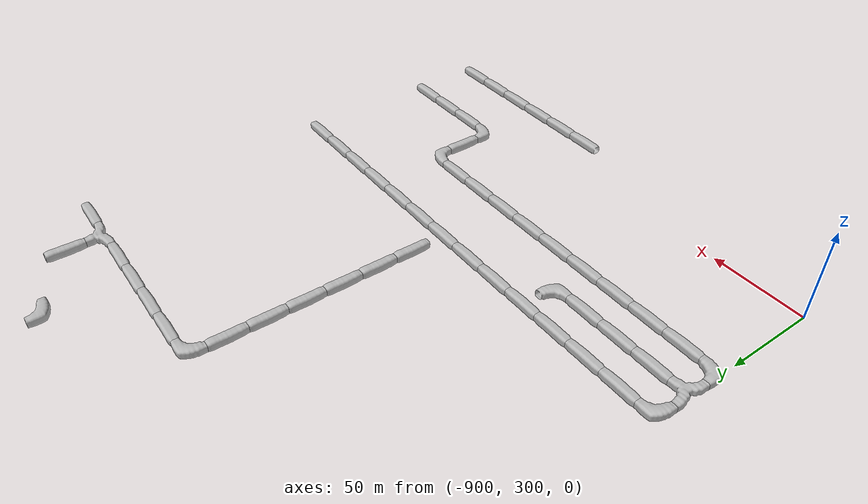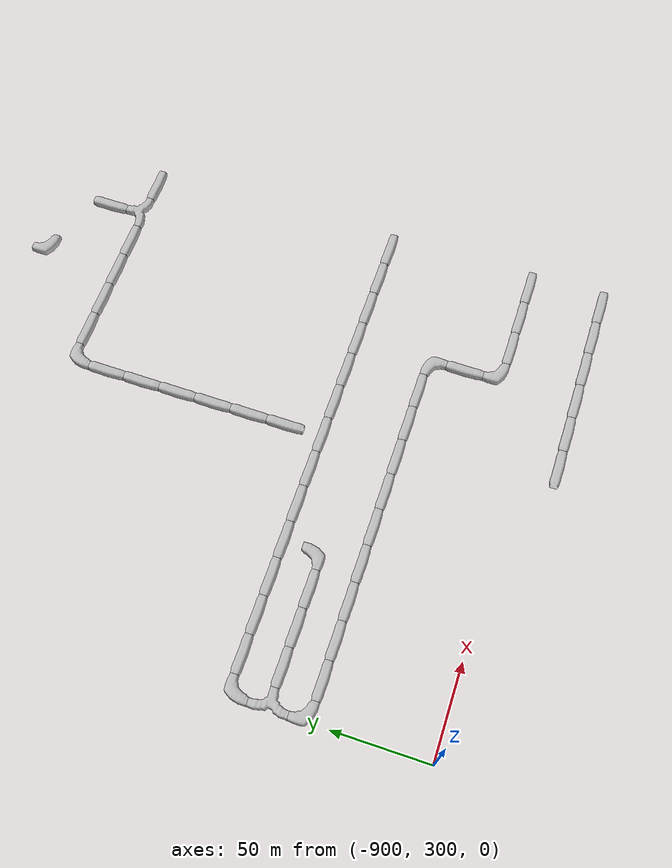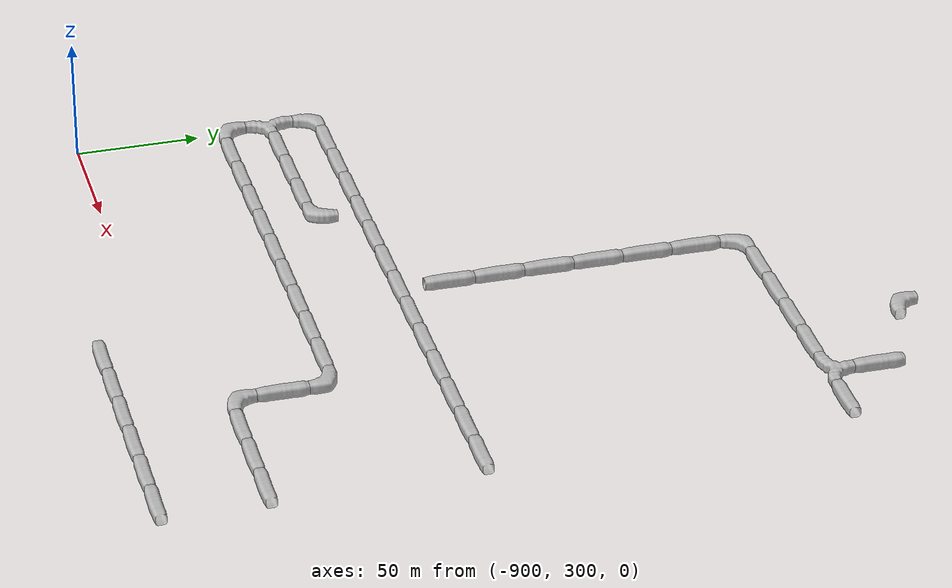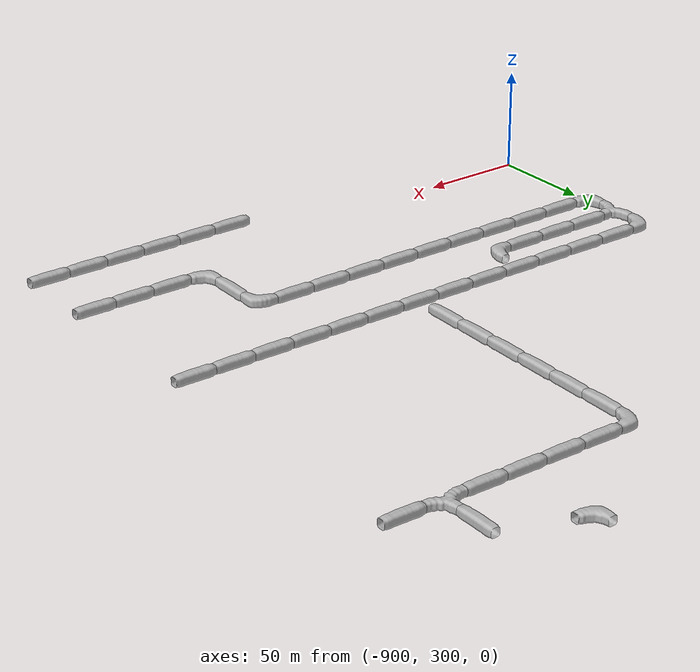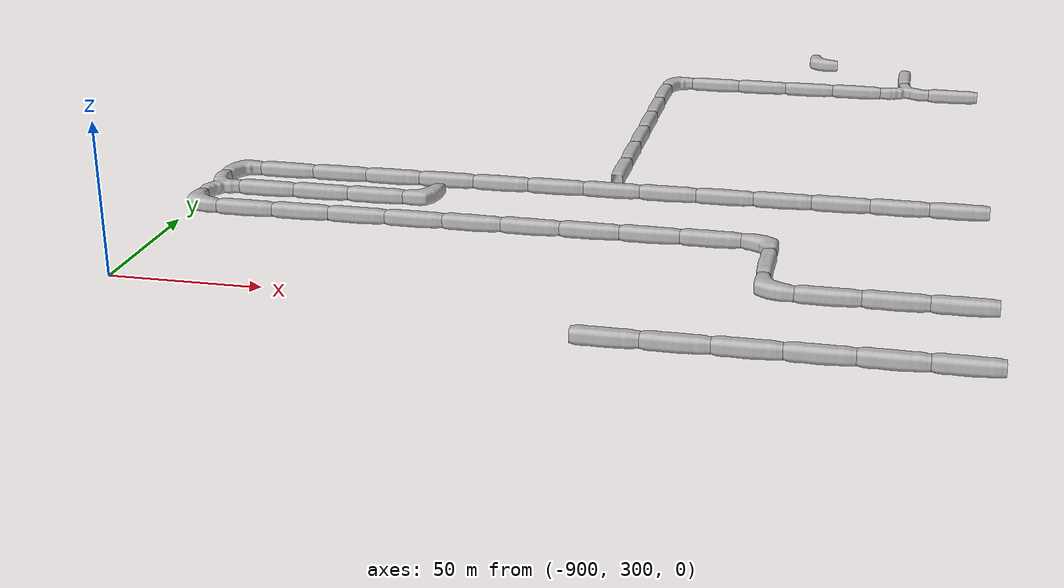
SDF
<sdf version="1.6">
 <world name="cave_32000_8">
  <include>
   <static>true</static>
   <name>cave_-32_20</name>
   <pose>-640 400 0 0 0 1.5707963267948966</pose>
   <uri>model://cave_straight_20m</uri>
  </include>
  <include>
   <static>true</static>
   <name>cave_-33_20</name>
   <pose>-660 400 0 0 0 1.5707963267948966</pose>
   <uri>model://cave_straight_20m</uri>
  </include>
  <include>
   <static>true</static>
   <name>cave_-34_20</name>
   <pose>-680 400 0 0 0 1.5707963267948966</pose>
   <uri>model://cave_straight_20m</uri>
  </include>
  <include>
   <static>true</static>
   <name>cave_-35_20</name>
   <pose>-700 400 0 0 0 1.5707963267948966</pose>
   <uri>model://cave_straight_20m</uri>
  </include>
  <include>
   <static>true</static>
   <name>cave_-36_20</name>
   <pose>-720 400 0 0 0 1.5707963267948966</pose>
   <uri>model://cave_straight_20m</uri>
  </include>
  <include>
   <static>true</static>
   <name>cave_-37_20</name>
   <pose>-740 400 0 0 0 1.5707963267948966</pose>
   <uri>model://cave_straight_20m</uri>
  </include>
  <include>
   <static>true</static>
   <name>cave_-38_20</name>
   <pose>-760 400 0 0 0 1.5707963267948966</pose>
   <uri>model://cave_straight_20m</uri>
  </include>
  <include>
   <static>true</static>
   <name>cave_-39_20</name>
   <pose>-780 400 0 0 0 1.5707963267948966</pose>
   <uri>model://cave_straight_20m</uri>
  </include>
  <include>
   <static>true</static>
   <name>cave_-40_20</name>
   <pose>-800 400 0 0 0 1.5707963267948966</pose>
   <uri>model://cave_straight_20m</uri>
  </include>
  <include>
   <static>true</static>
   <name>cave_-41_20</name>
   <pose>-820 400 0 0 0 1.5707963267948966</pose>
   <uri>model://cave_straight_20m</uri>
  </include>
  <include>
   <static>true</static>
   <name>cave_-42_20</name>
   <pose>-840 400 0 0 0 1.5707963267948966</pose>
   <uri>model://cave_straight_20m</uri>
  </include>
  <include>
   <static>true</static>
   <name>cave_-43_20</name>
   <pose>-860 400 0 0 0 1.5707963267948966</pose>
   <uri>model://cave_straight_20m</uri>
  </include>
  <include>
   <static>true</static>
   <name>cave_-44_20</name>
   <pose>-880 400 0 0 0 1.5707963267948966</pose>
   <uri>model://cave_straight_20m</uri>
  </include>
  <include>
   <static>true</static>
   <name>cave_-45_20</name>
   <pose>-900 400 0 0 0 -1.5707963267948966</pose>
   <uri>model://cave_L_20m</uri>
  </include>
  <include>
   <static>true</static>
   <name>cave_-45_19</name>
   <pose>-900 380 0 0 0 -1.5707963267948966</pose>
   <uri>model://cave_3way_20m</uri>
  </include>
  <include>
   <static>true</static>
   <name>cave_-44_19</name>
   <pose>-880 380 0 0 0 1.5707963267948966</pose>
   <uri>model://cave_straight_20m</uri>
  </include>
  <include>
   <static>true</static>
   <name>cave_-43_19</name>
   <pose>-860 380 0 0 0 1.5707963267948966</pose>
   <uri>model://cave_straight_20m</uri>
  </include>
  <include>
   <static>true</static>
   <name>cave_-42_19</name>
   <pose>-840 380 0 0 0 1.5707963267948966</pose>
   <uri>model://cave_straight_20m</uri>
  </include>
  <include>
   <static>true</static>
   <name>cave_-41_19</name>
   <pose>-820 380 0 0 0 1.5707963267948966</pose>
   <uri>model://cave_L_20m</uri>
  </include>
  <include>
   <static>true</static>
   <name>cave_-45_18</name>
   <pose>-900 360 0 0 0 0.0</pose>
   <uri>model://cave_L_20m</uri>
  </include>
  <include>
   <static>true</static>
   <name>cave_-44_18</name>
   <pose>-880 360 0 0 0 1.5707963267948966</pose>
   <uri>model://cave_straight_20m</uri>
  </include>
  <include>
   <static>true</static>
   <name>cave_-43_18</name>
   <pose>-860 360 0 0 0 1.5707963267948966</pose>
   <uri>model://cave_straight_20m</uri>
  </include>
  <include>
   <static>true</static>
   <name>cave_-42_18</name>
   <pose>-840 360 0 0 0 1.5707963267948966</pose>
   <uri>model://cave_straight_20m</uri>
  </include>
  <include>
   <static>true</static>
   <name>cave_-41_18</name>
   <pose>-820 360 0 0 0 1.5707963267948966</pose>
   <uri>model://cave_straight_20m</uri>
  </include>
  <include>
   <static>true</static>
   <name>cave_-40_18</name>
   <pose>-800 360 0 0 0 1.5707963267948966</pose>
   <uri>model://cave_straight_20m</uri>
  </include>
  <include>
   <static>true</static>
   <name>cave_-39_18</name>
   <pose>-780 360 0 0 0 1.5707963267948966</pose>
   <uri>model://cave_straight_20m</uri>
  </include>
  <include>
   <static>true</static>
   <name>cave_-38_18</name>
   <pose>-760 360 0 0 0 1.5707963267948966</pose>
   <uri>model://cave_straight_20m</uri>
  </include>
  <include>
   <static>true</static>
   <name>cave_-37_18</name>
   <pose>-740 360 0 0 0 1.5707963267948966</pose>
   <uri>model://cave_straight_20m</uri>
  </include>
  <include>
   <static>true</static>
   <name>cave_-36_18</name>
   <pose>-720 360 0 0 0 1.5707963267948966</pose>
   <uri>model://cave_straight_20m</uri>
  </include>
  <include>
   <static>true</static>
   <name>cave_-35_18</name>
   <pose>-700 360 0 0 0 3.141592653589793</pose>
   <uri>model://cave_L_20m</uri>
  </include>
  <include>
   <static>true</static>
   <name>cave_-35_17</name>
   <pose>-700 340 0 0 0 0.0</pose>
   <uri>model://cave_straight_20m</uri>
  </include>
  <include>
   <static>true</static>
   <name>cave_-35_16</name>
   <pose>-700 320 0 0 0 0.0</pose>
   <uri>model://cave_L_20m</uri>
  </include>
  <include>
   <static>true</static>
   <name>cave_-34_16</name>
   <pose>-680 320 0 0 0 1.5707963267948966</pose>
   <uri>model://cave_straight_20m</uri>
  </include>
  <include>
   <static>true</static>
   <name>cave_-33_16</name>
   <pose>-660 320 0 0 0 1.5707963267948966</pose>
   <uri>model://cave_straight_20m</uri>
  </include>
  <include>
   <static>true</static>
   <name>cave_-32_16</name>
   <pose>-640 320 0 0 0 1.5707963267948966</pose>
   <uri>model://cave_straight_20m</uri>
  </include>
  <include>
   <static>true</static>
   <name>cave_-33_28</name>
   <pose>-660 560 0 0 0 0.0</pose>
   <uri>model://cave_straight_20m</uri>
  </include>
  <include>
   <static>true</static>
   <name>cave_-33_27</name>
   <pose>-660 540 0 0 0 0.0</pose>
   <uri>model://cave_3way_20m</uri>
  </include>
  <include>
   <static>true</static>
   <name>cave_-32_27</name>
   <pose>-640 540 0 0 0 1.5707963267948966</pose>
   <uri>model://cave_straight_20m</uri>
  </include>
  <include>
   <static>true</static>
   <name>cave_-34_27</name>
   <pose>-680 540 0 0 0 1.5707963267948966</pose>
   <uri>model://cave_straight_20m</uri>
  </include>
  <include>
   <static>true</static>
   <name>cave_-35_27</name>
   <pose>-700 540 0 0 0 1.5707963267948966</pose>
   <uri>model://cave_straight_20m</uri>
  </include>
  <include>
   <static>true</static>
   <name>cave_-36_27</name>
   <pose>-720 540 0 0 0 1.5707963267948966</pose>
   <uri>model://cave_straight_20m</uri>
  </include>
  <include>
   <static>true</static>
   <name>cave_-37_27</name>
   <pose>-740 540 0 0 0 1.5707963267948966</pose>
   <uri>model://cave_straight_20m</uri>
  </include>
  <include>
   <static>true</static>
   <name>cave_-38_27</name>
   <pose>-760 540 0 0 0 -1.5707963267948966</pose>
   <uri>model://cave_L_20m</uri>
  </include>
  <include>
   <static>true</static>
   <name>cave_-38_26</name>
   <pose>-760 520 0 0 0 0.0</pose>
   <uri>model://cave_straight_20m</uri>
  </include>
  <include>
   <static>true</static>
   <name>cave_-38_25</name>
   <pose>-760 500 0 0 0 0.0</pose>
   <uri>model://cave_straight_20m</uri>
  </include>
  <include>
   <static>true</static>
   <name>cave_-38_24</name>
   <pose>-760 480 0 0 0 0.0</pose>
   <uri>model://cave_straight_20m</uri>
  </include>
  <include>
   <static>true</static>
   <name>cave_-38_23</name>
   <pose>-760 460 0 0 0 0.0</pose>
   <uri>model://cave_straight_20m</uri>
  </include>
  <include>
   <static>true</static>
   <name>cave_-38_22</name>
   <pose>-760 440 0 0 0 0.0</pose>
   <uri>model://cave_straight_20m</uri>
  </include>
  <include>
   <static>true</static>
   <name>cave_-38_21</name>
   <pose>-760 420 0 0 0 0.0</pose>
   <uri>model://cave_straight_20m</uri>
  </include>
  <include>
   <static>true</static>
   <name>cave_-35_29</name>
   <pose>-700 580 0 0 0 0.0</pose>
   <uri>model://cave_L_20m</uri>
  </include>
  <include>
   <static>true</static>
   <name>cave_-32_14</name>
   <pose>-640 280 0 0 0 1.5707963267948966</pose>
   <uri>model://cave_straight_20m</uri>
  </include>
  <include>
   <static>true</static>
   <name>cave_-33_14</name>
   <pose>-660 280 0 0 0 1.5707963267948966</pose>
   <uri>model://cave_straight_20m</uri>
  </include>
  <include>
   <static>true</static>
   <name>cave_-34_14</name>
   <pose>-680 280 0 0 0 1.5707963267948966</pose>
   <uri>model://cave_straight_20m</uri>
  </include>
  <include>
   <static>true</static>
   <name>cave_-35_14</name>
   <pose>-700 280 0 0 0 1.5707963267948966</pose>
   <uri>model://cave_straight_20m</uri>
  </include>
  <include>
   <static>true</static>
   <name>cave_-36_14</name>
   <pose>-720 280 0 0 0 1.5707963267948966</pose>
   <uri>model://cave_straight_20m</uri>
  </include>
  <include>
   <static>true</static>
   <name>cave_-37_14</name>
   <pose>-740 280 0 0 0 1.5707963267948966</pose>
   <uri>model://cave_straight_20m</uri>
  </include>
 </world>
</sdf>
